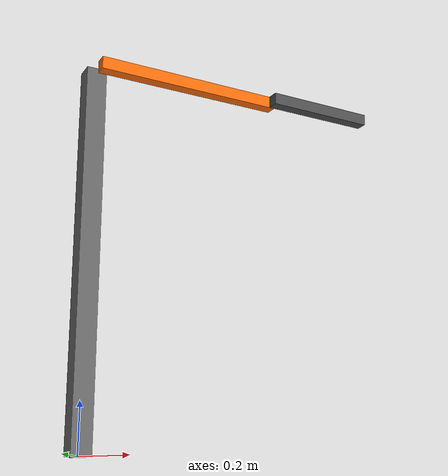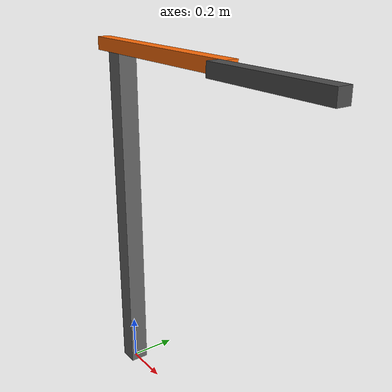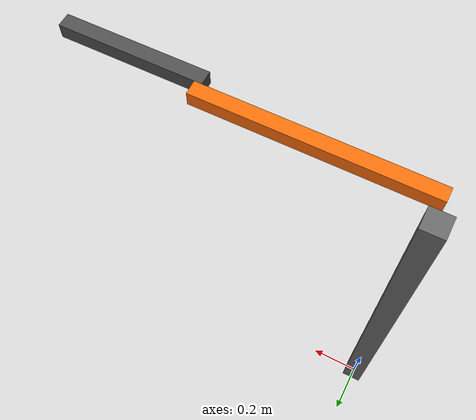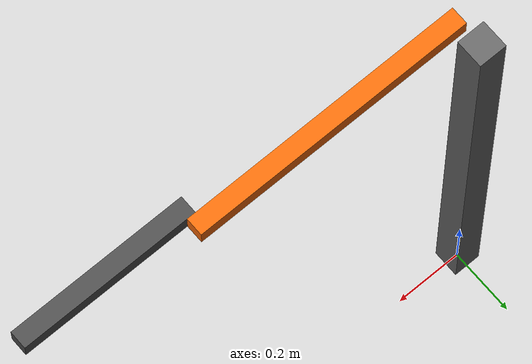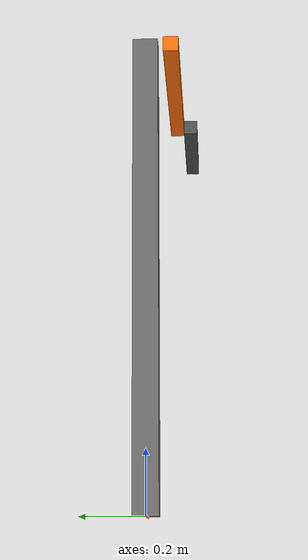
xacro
<?xml version="1.0" ?>
<robot name="tarm" xmlns:xacro="http://ros.org/wiki/xacro">

	<xacro:include filename="$(find tarm_description)/urdf/materials.xacro"/>
	<xacro:include filename="$(find tarm_description)/urdf/tarm.gazebo.xacro"/>
	<xacro:include filename="$(find tarm_description)/urdf/tarm.transmission.xacro"/>

	<!-- Properties -->
    <xacro:property name="PI" value="3.1415926535897931"/>
	<xacro:property name="upper_length" value="0.5"/>
	<xacro:property name="lower_length" value="0.8"/>
	<xacro:property name="arm_width" value="0.05"/>
	<xacro:property name="upper_mass" value="1.0"/>
	<xacro:property name="lower_mass" value="1.0"/>
	<!-- Base -->
	<xacro:property name="base_length" value="1.5"/>
	<xacro:property name="base_width" value="0.08"/>
	<xacro:property name="base_mass" value="2.5"/>

	<!-- Used for fixing robot to Gazebo 'base_link' -->
	<link name="world"/>

	<joint name="fixed" type="fixed">
		<parent link="world"/>
		<child link="base_link"/>
	</joint>

	<link name="base_link">
		<visual>
			<origin xyz="0 0 ${base_length/2}" rpy="0 0 0"/>
			<geometry>
	         	<box size="${base_width} ${base_width} ${base_length}"/>
	      	</geometry>
			<material name="light_black"/>
		</visual>

		<collision>
			<origin xyz="0 0 ${base_length/2}" rpy="0 0 0"/>
			<geometry>
	         	<box size="${base_width} ${base_width} ${base_length}"/>
	      	</geometry>
			<material name="light_black"/>
		</collision>

		<inertial>
			<origin xyz="0 0 ${base_length/2}" rpy="0 0 0"/>
			<mass value="${base_mass}"/>
			<inertia ixx="0.1" ixy="0.0" ixz="0.0"
					iyy="0.1" iyz="0.0"
					izz="0.1" />
		</inertial>
	</link>

	<!-- Lower Arm Joint -->
	<joint name="lower_arm_joint" type="revolute">
		<parent link="base_link"/>
		<child link="lower_arm_link"/>
		<origin xyz="0.0 -${base_width} ${base_length}" rpy="${PI/2} 0 0"/>
		<axis xyz="0 0 1"/>
		<limit effort="1000.0" lower="-2.0" upper="2.0" velocity="0.5"/>
	</joint>

	<!-- Lower Arm Link -->
	<link name="lower_arm_link">
		<visual>
			<origin xyz="${lower_length/2} 0 0" rpy="0 0 0"/>
			<geometry>
	         	<box size="${lower_length} ${arm_width} ${arm_width}"/>
	      	</geometry>
			<material name="orange"/>
		</visual>

		<collision>
			<origin xyz="${lower_length/2} 0 0" rpy="0 0 0"/>
			<geometry>
	         	<box size="${lower_length} ${arm_width} ${arm_width}"/>
	      	</geometry>
			<material name="orange"/>
		</collision>

		<inertial>
			<origin xyz="${lower_length/2} 0 0" rpy="0 0 0"/>
			<mass value="${lower_mass}"/>
			<inertia ixx="0.1" ixy="0.0" ixz="0.0"
					iyy="0.1" iyz="0.0"
					izz="0.1" />
		</inertial>

	</link>

	<!-- Upper Arm Joint -->
	<joint name="upper_arm_joint" type="revolute">
		<parent link="lower_arm_link"/>
		<child link="upper_arm_link"/>
		<origin xyz="${lower_length - arm_width/2} 0 ${arm_width}" rpy="0 0 0"/>
		<axis xyz="0 0 1"/>
		<limit effort="1000.0" lower="-2.0" upper="2.0" velocity="0.5"/>
	</joint>

	<!-- Upper Arm Link -->
	<link name="upper_arm_link">
		<visual>
			<origin xyz="${upper_length/2} 0 0" rpy="0 0 0"/>
			<geometry>
	         	<box size="${upper_length} ${arm_width} ${arm_width}"/>
	      	</geometry>
			<material name="dark"/>
		</visual>

		<collision>
			<origin xyz="${upper_length/2} 0 0" rpy="0 0 0"/>
			<geometry>
	         	<box size="${upper_length} ${arm_width} ${arm_width}"/>
	      	</geometry>
			<material name="dark"/>
		</collision>

		<inertial>
			<origin xyz="${upper_length/2} 0 0" rpy="0 0 0"/>
			<mass value="${upper_mass}"/>
			<inertia ixx="0.1" ixy="0.0" ixz="0.0"
					iyy="0.1" iyz="0.0"
					izz="0.1" />
		</inertial>

	</link>

</robot>

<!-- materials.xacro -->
<robot name="xacro_properties" xmlns:xacro="http://ros.org/wiki/xacro">

  <!-- Urdf Colors -->
  <material name="black">
      <color rgba="0.0 0.0 0.0 1.0"/>
  </material>

  <material name="dark">
    <color rgba="0.3 0.3 0.3 1.0"/>
  </material>
  <material name="light_black">
    <color rgba="0.4 0.4 0.4 1.0"/>
  </material>

  <material name="blue">
    <color rgba="0.0 0.0 0.8 1.0"/>
  </material>

  <material name="green">
    <color rgba="0.0 0.8 0.0 1.0"/>
  </material>

  <material name="grey">
    <color rgba="0.5 0.5 0.5 1.0"/>
  </material>

  <material name="orange">
    <color rgba="${255/255} ${108/255} ${10/255} 1.0"/>
  </material>

  <material name="brown">
    <color rgba="${222/255} ${207/255} ${195/255} 1.0"/>
  </material>

  <material name="red">
    <color rgba="0.8 0.0 0.0 1.0"/>
  </material>

  <material name="white">
    <color rgba="1.0 1.0 1.0 1.0"/>
  </material>
</robot>
